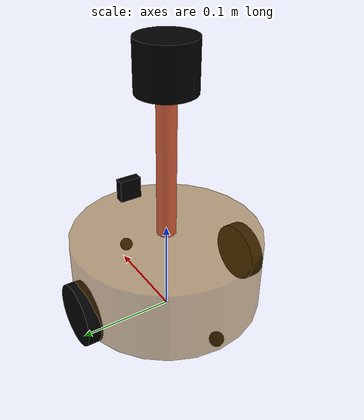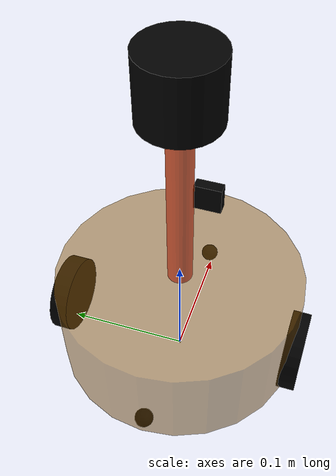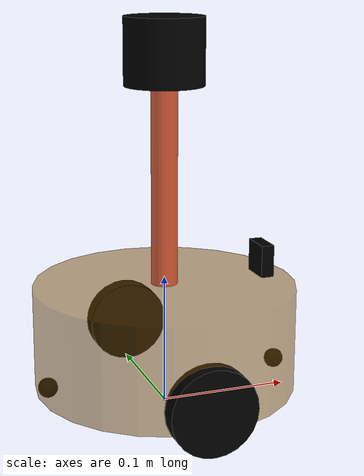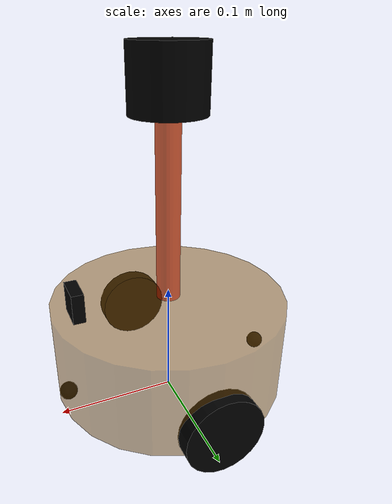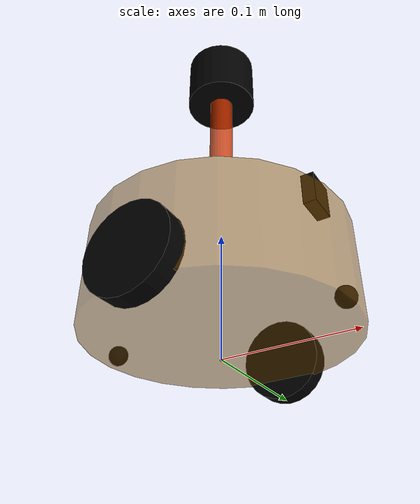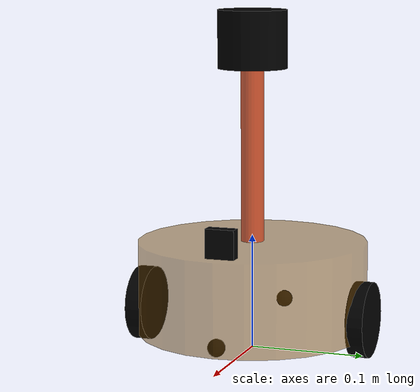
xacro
<robot name="my_car_camera" xmlns:xacro="http://wiki.ros.org/xacro">
    <xacro:include filename="1.xacro" />
    <xacro:include filename="base.xacro" />
    <xacro:include filename="camera.xacro" />
    <xacro:include filename="laser.xacro" />
        <xacro:include filename="move.xacro" />
    <xacro:include filename="camera_sensor.xacro" />
    <xacro:include filename="laser_sensor.xacro" />
</robot>

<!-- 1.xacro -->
<robot name="base" xmlns:xacro="http://wiki.ros.org/xacro">

    <xacro:macro name="sphere_inertial_matrix" params="m r">
        <inertial>
            <mass value="${m}" />
            <inertia ixx="${2*m*r*r/5}" ixy="0" ixz="0"
                     iyy="${2*m*r*r/5}" iyz="0"
                     izz="${2*m*r*r/5}" />
        </inertial>
    </xacro:macro>

    <xacro:macro name="cylinder_inertial_matrix" params="m r h">
        <inertial>
            <mass value="${m}" />
            <inertia ixx="${m*(3*r*r+h*h)/12}" ixy="0" ixz="0"
                     iyy="${m*(3*r*r+h*h)/12}" iyz="0"
                     izz="${m*r*r/2}" />
        </inertial>
    </xacro:macro>

    <xacro:macro name="Box_inertial_matrix" params="m l w h">
        <inertial>
            <mass value="${m}" />

            <inertia ixx="${m*(h*h + l*l)/12}" ixy="0" ixz="0"
                     iyy="${m*(w*w + l*l)/12}" iyz="0"
                     izz="${m*(w*w + h*h)/12}" />
        </inertial>
    </xacro:macro>
</robot>

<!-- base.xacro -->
<robot name="my_base" xmlns:xacro="http://wiki.ros.org/xacro">
    <xacro:include filename="1.xacro" />
    <xacro:property name="PI" value="3.1415926"/>
    <material name="black">
        <color rgba="0.0 0.0 0.0 1.0" />
    </material>
    <xacro:property name="base_footprint_radius" value="0.001" />
    <xacro:property name="base_link_radius" value="0.1" />
    <xacro:property name="base_link_length" value="0.08" />
    <xacro:property name="earth_space" value="0.015" />
    <xacro:property name="base_link_m" value="0.5" />

    <link name="base_footprint">
        <visual>
            <geometry>
                <sphere radius="${base_footprint_radius}" />
            </geometry>
        </visual>
    </link>

    <link name="base_link">
        <visual>
            <geometry>
                <cylinder radius="${base_link_radius}" length="${base_link_length}" />
            </geometry>
            <origin xyz="0 0 0" rpy="0 0 0" />
            <material name="yellow">
                <color rgba="0.5 0.3 0.0 0.5" />
            </material>
        </visual>
        <collision>
            <geometry>
                <cylinder radius="${base_link_radius}" length="${base_link_length}" />
            </geometry>
            <origin xyz="0 0 0" rpy="0 0 0" />
        </collision>

        <xacro:cylinder_inertial_matrix m="${base_link_m}" r="${base_link_radius}" h="${base_link_length}" />
    </link>

    <joint name="base_link2base_footprint" type="fixed">
        <parent link="base_footprint" />
        <child link="base_link" />
        <origin xyz="0 0 ${earth_space + base_link_length / 2 }" />
    </joint>
    <gazebo reference="base_link">
        <material>Gazebo/Yellow</material>
    </gazebo>

    <xacro:property name="wheel_radius" value="0.0325" />
    <xacro:property name="wheel_length" value="0.015" />
    <xacro:property name="wheel_m" value="0.05" />

    <xacro:macro name="add_wheels" params="name flag">
        <link name="${name}_wheel">
            <visual>
                <geometry>
                    <cylinder radius="${wheel_radius}" length="${wheel_length}" />
                </geometry>
                <origin xyz="0.0 0.0 0.0" rpy="${PI / 2} 0 0" />
                <material name="black" />
            </visual>
            <collision>
                <geometry>
                    <cylinder radius="${wheel_radius}" length="${wheel_length}" />
                </geometry>
                <origin xyz="0.0 0.0 0.0" rpy="${PI / 2} 0 0" />
            </collision>
            <xacro:cylinder_inertial_matrix m="${wheel_m}" r="${wheel_radius}" h="${wheel_length}" />
        </link>

        <joint name="${name}_wheel2base_link" type="continuous">
            <parent link="base_link" />
            <child link="${name}_wheel" />
            <origin xyz="0 ${flag * base_link_radius} ${-(earth_space + base_link_length / 2 - wheel_radius)}" />
            <axis xyz="0 1 0" />
        </joint>
        <gazebo reference="${name}_wheel">
            <material>Gazebo/Red</material>
        </gazebo>
    </xacro:macro>

    <xacro:add_wheels name="left" flag="1" />
    <xacro:add_wheels name="right" flag="-1" />
    <xacro:property name="support_wheel_radius" value="0.0075" />
    <xacro:property name="support_wheel_m" value="0.03" />

    <xacro:macro name="add_support_wheel" params="name flag">
        <link name="${name}_wheel">
            <visual>
                <geometry>
                    <sphere radius="${support_wheel_radius}" />
                </geometry>
                <origin xyz="0 0 0" rpy="0 0 0" />
                <material name="black" />
            </visual>
            <collision>
                <geometry>
                    <sphere radius="${support_wheel_radius}" />
                </geometry>
                <origin xyz="0 0 0" rpy="0 0 0" />
            </collision>
            <xacro:sphere_inertial_matrix m="${support_wheel_m}" r="${support_wheel_radius}" />
        </link>

        <joint name="${name}_wheel2base_link" type="continuous">
            <parent link="base_link" />
            <child link="${name}_wheel" />
            <origin xyz="${flag * (base_link_radius - support_wheel_radius)} 0 ${-(base_link_length / 2 - support_wheel_radius)}" />
            <axis xyz="1 1 1" />
        </joint>
        <gazebo reference="${name}_wheel">
            <material>Gazebo/Red</material>
        </gazebo>
    </xacro:macro>

    <xacro:add_support_wheel name="front" flag="1" />
    <xacro:add_support_wheel name="back" flag="-1" />

</robot>

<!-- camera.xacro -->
<robot name="my_camera" xmlns:xacro="http://wiki.ros.org/xacro">
    <xacro:include filename="1.xacro" />
    <xacro:property name="camera_length" value="0.01" />
    <xacro:property name="camera_width" value="0.025" />
    <xacro:property name="camera_height" value="0.025" />
    <xacro:property name="camera_x" value="0.08" />
    <xacro:property name="camera_y" value="0.0" />
    <xacro:property name="camera_z" value="${base_link_length / 2 + camera_height / 2}" />

    <xacro:property name="camera_m" value="0.01" />

    <link name="camera">
        <visual>
            <geometry>
                <box size="${camera_length} ${camera_width} ${camera_height}" />
            </geometry>
            <origin xyz="0.0 0.0 0.0" rpy="0.0 0.0 0.0" />
            <material name="black" />
        </visual>
        <collision>
            <geometry>
                <box size="${camera_length} ${camera_width} ${camera_height}" />
            </geometry>
            <origin xyz="0.0 0.0 0.0" rpy="0.0 0.0 0.0" />
        </collision>
        <xacro:Box_inertial_matrix m="${camera_m}" l="${camera_length}" w="${camera_width}" h="${camera_height}" />
    </link>

    <joint name="camera2base_link" type="fixed">
        <parent link="base_link" />
        <child link="camera" />
        <origin xyz="${camera_x} ${camera_y} ${camera_z}" />
    </joint>
    <gazebo reference="camera">
        <material>Gazebo/Blue</material>
    </gazebo>
</robot>

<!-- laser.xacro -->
<robot name="my_laser" xmlns:xacro="http://wiki.ros.org/xacro">
    <xacro:include filename="1.xacro" />

    <xacro:property name="support_length" value="0.15" />
    <xacro:property name="support_radius" value="0.01" />
    <xacro:property name="support_x" value="0.0" />
    <xacro:property name="support_y" value="0.0" />
    <xacro:property name="support_z" value="${base_link_length / 2 + support_length / 2}" />

    <xacro:property name="support_m" value="0.02" />

    <link name="support">
        <visual>
            <geometry>
                <cylinder radius="${support_radius}" length="${support_length}" />
            </geometry>
            <origin xyz="0.0 0.0 0.0" rpy="0.0 0.0 0.0" />
            <material name="red">
                <color rgba="0.8 0.2 0.0 0.8" />
            </material>
        </visual>

        <collision>
            <geometry>
                <cylinder radius="${support_radius}" length="${support_length}" />
            </geometry>
            <origin xyz="0.0 0.0 0.0" rpy="0.0 0.0 0.0" />
        </collision>

        <xacro:cylinder_inertial_matrix m="${support_m}" r="${support_radius}" h="${support_length}" />
    </link>

    <joint name="support2base_link" type="fixed">
        <parent link="base_link" />
        <child link="support" />
        <origin xyz="${support_x} ${support_y} ${support_z}" />
    </joint>

    <gazebo reference="support">
        <material>Gazebo/White</material>
    </gazebo>

    <xacro:property name="laser_length" value="0.05" />
    <xacro:property name="laser_radius" value="0.03" />
    <xacro:property name="laser_x" value="0.0" />
    <xacro:property name="laser_y" value="0.0" />
    <xacro:property name="laser_z" value="${support_length / 2 + laser_length / 2}" />
    <xacro:property name="laser_m" value="0.1" />

    <link name="laser">
        <visual>
            <geometry>
                <cylinder radius="${laser_radius}" length="${laser_length}" />
            </geometry>
            <origin xyz="0.0 0.0 0.0" rpy="0.0 0.0 0.0" />
            <material name="black" />
        </visual>
        <collision>
            <geometry>
                <cylinder radius="${laser_radius}" length="${laser_length}" />
            </geometry>
            <origin xyz="0.0 0.0 0.0" rpy="0.0 0.0 0.0" />
        </collision>
        <xacro:cylinder_inertial_matrix m="${laser_m}" r="${laser_radius}" h="${laser_length}" />
    </link>

    <joint name="laser2support" type="fixed">
        <parent link="support" />
        <child link="laser" />
        <origin xyz="${laser_x} ${laser_y} ${laser_z}" />
    </joint>
    <gazebo reference="laser">
        <material>Gazebo/Black</material>
    </gazebo>
</robot>
